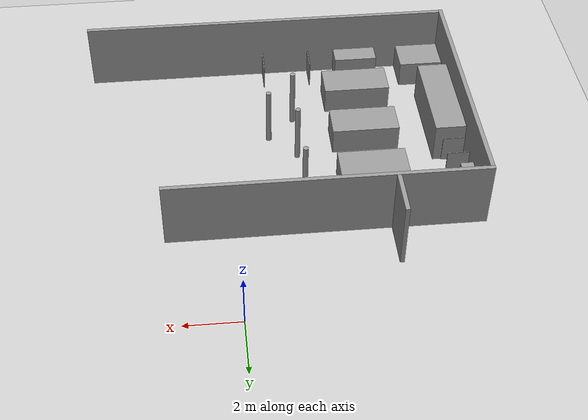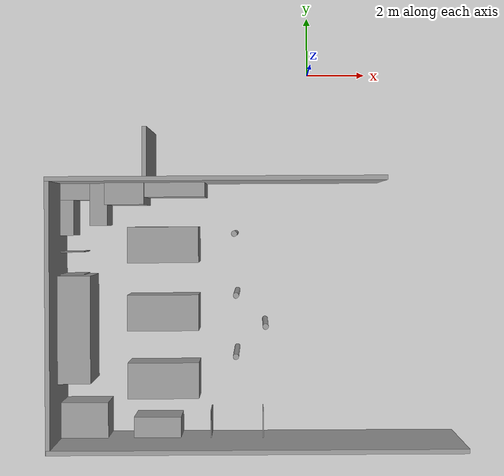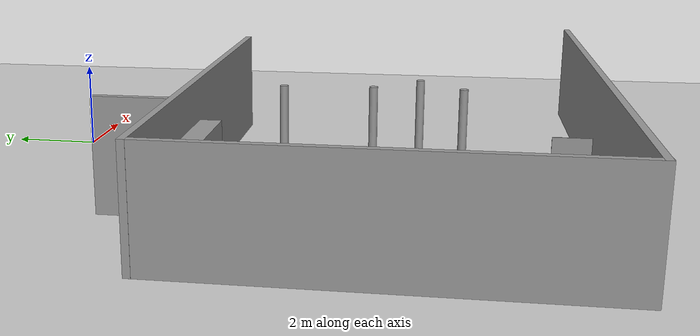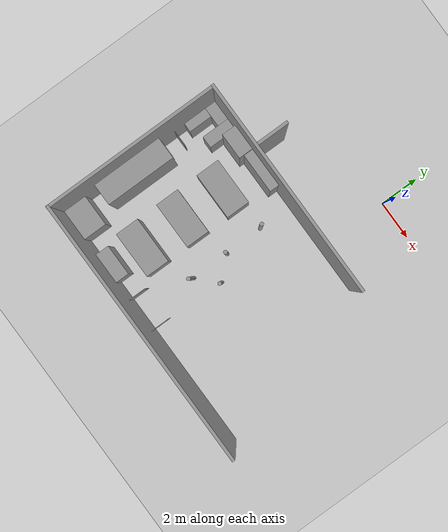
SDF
<sdf version="1.6">
 <world name="default">
  <model name="ground_plane">
   <static>1</static>
   <link name="link">
    <collision name="collision">
     <geometry><plane><normal>0 0 1</normal><size>100 100</size></plane></geometry>
     <surface>
      <contact><collide_bitmask>65535</collide_bitmask></contact>
      <friction><ode><mu>1</mu><mu2>1</mu2></ode></friction>
     </surface>
    </collision>
    <visual name="visual">
     <cast_shadows>0</cast_shadows>
     <geometry><plane><normal>0 0 1</normal><size>100 100</size></plane></geometry>
     <material>
      <script><uri>file://media/materials/scripts/gazebo.material</uri><name>Gazebo/Grey</name></script>
     </material>
    </visual>
   </link>
  </model>
  <model name="a4">
   <pose>-1.78326 -12.5146 0 0 -0 0</pose>
   <link name="Wall_12">
    <collision name="Wall_12_Collision">
     <geometry><box><size>13.62 0.15 2.5</size></box></geometry>
     <pose>0 0 1.25 0 -0 0</pose>
    </collision>
    <visual name="Wall_12_Visual">
     <pose>0 0 1.25 0 -0 0</pose>
     <geometry><box><size>13.62 0.15 2.5</size></box></geometry>
     <material>
      <script><uri>file://media/materials/scripts/gazebo.material</uri><name>Gazebo/Grey</name></script>
      <ambient>1 1 1 1</ambient>
     </material>
     <meta><layer>0</layer></meta>
    </visual>
   </link>
   <static>1</static>
  </model>
  <model name="a3_clone">
   <pose>-8.5273 -8.18669 0 0 -0 0</pose>
   <link name="Wall_10">
    <collision name="Wall_10_Collision">
     <geometry><box><size>8.82 0.15 2.5</size></box></geometry>
     <pose>0 0 1.25 0 -0 0</pose>
    </collision>
    <visual name="Wall_10_Visual">
     <pose>0 0 1.25 0 -0 0</pose>
     <geometry><box><size>8.82 0.15 2.5</size></box></geometry>
     <material>
      <script><uri>file://media/materials/scripts/gazebo.material</uri><name>Gazebo/Grey</name></script>
      <ambient>1 1 1 1</ambient>
     </material>
     <meta><layer>0</layer></meta>
    </visual>
    <pose>0 -0 0 0 -0 -1.5708</pose>
   </link>
   <static>1</static>
  </model>
  <model name="aisle6">
   <pose>-3.07982 -3.70444 0 0 -0 0</pose>
   <link name="Wall_22">
    <collision name="Wall_22_Collision">
     <geometry><box><size>11.05 0.15 2.5</size></box></geometry>
     <pose>0 0 1.25 0 -0 0</pose>
    </collision>
    <visual name="Wall_22_Visual">
     <pose>0 0 1.25 0 -0 0</pose>
     <geometry><box><size>11.05 0.15 2.5</size></box></geometry>
     <material>
      <script><uri>file://media/materials/scripts/gazebo.material</uri><name>Gazebo/Grey</name></script>
      <ambient>1 1 1 1</ambient>
     </material>
     <meta><layer>0</layer></meta>
    </visual>
   </link>
   <static>1</static>
  </model>
  <model name="aisle1_clone">
   <pose>-5.38806 -2.82651 0 0 -0 0</pose>
   <link name="Wall_2">
    <collision name="Wall_2_Collision">
     <geometry><box><size>1.6 0.15 2.5</size></box></geometry>
     <pose>0 0 1.25 0 -0 0</pose>
    </collision>
    <visual name="Wall_2_Visual">
     <pose>0 0 1.25 0 -0 0</pose>
     <geometry><box><size>1.6 0.15 2.5</size></box></geometry>
     <material>
      <script><uri>file://media/materials/scripts/gazebo.material</uri><name>Gazebo/Grey</name></script>
      <ambient>1 1 1 1</ambient>
     </material>
     <meta><layer>0</layer></meta>
    </visual>
    <pose>0 -0 0 0 -0 -1.5708</pose>
   </link>
   <static>1</static>
  </model>
  <model name="unit_box_5">
   <link name="link">
    <inertial>
     <mass>10</mass>
     <inertia>
      <ixx>0.166667</ixx>
      <ixy>0</ixy>
      <ixz>0</ixz>
      <iyy>0.166667</iyy>
      <iyz>0</iyz>
      <izz>0.166667</izz>
     </inertia>
    </inertial>
    <visual name="visual">
     <geometry><box><size>1.6 1.2 1</size></box></geometry>
     <material>
      <script><name>Gazebo/Grey</name><uri>file://media/materials/scripts/gazebo.material</uri></script>
      <shader type="vertex"><normal_map>__default__</normal_map></shader>
      <ambient>0.3 0.3 0.3 1</ambient>
      <diffuse>0.7 0.7 0.7 1</diffuse>
      <specular>0.01 0.01 0.01 1</specular>
      <emissive>0 0 0 1</emissive>
     </material>
    </visual>
    <collision name="collision">
     <geometry><box><size>1.6 1.2 1</size></box></geometry>
     <surface>
      <friction>
       <ode><mu>1</mu><mu2>1</mu2><fdir1>0 0 0</fdir1><slip1>0</slip1><slip2>0</slip2></ode>
       <torsional>
        <coefficient>1</coefficient>
        <patch_radius>0</patch_radius>
        <surface_radius>0</surface_radius>
        <use_patch_radius>1</use_patch_radius>
        <ode><slip>0</slip></ode>
       </torsional>
      </friction>
      <bounce><restitution_coefficient>0</restitution_coefficient><threshold>1e+06</threshold></bounce>
      <contact>
       <collide_without_contact>0</collide_without_contact>
       <collide_without_contact_bitmask>1</collide_without_contact_bitmask>
       <collide_bitmask>1</collide_bitmask>
       <ode>
        <soft_cfm>0</soft_cfm>
        <soft_erp>0.2</soft_erp>
        <kp>1e+13</kp>
        <kd>1</kd>
        <max_vel>0.01</max_vel>
        <min_depth>0</min_depth>
       </ode>
       <bullet>
        <split_impulse>1</split_impulse>
        <split_impulse_penetration_threshold>-0.01</split_impulse_penetration_threshold>
        <soft_cfm>0</soft_cfm>
        <soft_erp>0.2</soft_erp>
        <kp>1e+13</kp>
        <kd>1</kd>
       </bullet>
      </contact>
     </surface>
    </collision>
   </link>
   <static>0</static>
   <pose>-7.6506 -11.826 0.499996 0 -6e-06 0</pose>
  </model>
  <model name="backfuni">
   <static>1</static>
   <link name="link">
    <inertial>
     <mass>10</mass>
     <inertia>
      <ixx>0.166667</ixx>
      <ixy>0</ixy>
      <ixz>0</ixz>
      <iyy>0.166667</iyy>
      <iyz>0</iyz>
      <izz>0.166667</izz>
     </inertia>
    </inertial>
    <visual name="visual">
     <geometry><box><size>3.6 1.1 1.5</size></box></geometry>
     <material>
      <script><name>Gazebo/Grey</name><uri>file://media/materials/scripts/gazebo.material</uri></script>
      <shader type="vertex"><normal_map>__default__</normal_map></shader>
      <ambient>0.3 0.3 0.3 1</ambient>
      <diffuse>0.7 0.7 0.7 1</diffuse>
      <specular>0.01 0.01 0.01 1</specular>
      <emissive>0 0 0 1</emissive>
     </material>
    </visual>
    <collision name="collision">
     <geometry><box><size>3.6 1.1 1.5</size></box></geometry>
     <surface>
      <friction>
       <ode><mu>1</mu><mu2>1</mu2><fdir1>0 0 0</fdir1><slip1>0</slip1><slip2>0</slip2></ode>
       <torsional>
        <coefficient>1</coefficient>
        <patch_radius>0</patch_radius>
        <surface_radius>0</surface_radius>
        <use_patch_radius>1</use_patch_radius>
        <ode><slip>0</slip></ode>
       </torsional>
      </friction>
      <bounce><restitution_coefficient>0</restitution_coefficient><threshold>1e+06</threshold></bounce>
      <contact>
       <collide_without_contact>0</collide_without_contact>
       <collide_without_contact_bitmask>1</collide_without_contact_bitmask>
       <collide_bitmask>1</collide_bitmask>
       <ode>
        <soft_cfm>0</soft_cfm>
        <soft_erp>0.2</soft_erp>
        <kp>1e+13</kp>
        <kd>1</kd>
        <max_vel>0.01</max_vel>
        <min_depth>0</min_depth>
       </ode>
       <bullet>
        <split_impulse>1</split_impulse>
        <split_impulse_penetration_threshold>-0.01</split_impulse_penetration_threshold>
        <soft_cfm>0</soft_cfm>
        <soft_erp>0.2</soft_erp>
        <kp>1e+13</kp>
        <kd>1</kd>
       </bullet>
      </contact>
     </surface>
    </collision>
   </link>
   <pose>-7.89809 -8.70061 0.739652 6e-06 0 -1.57022</pose>
  </model>
  <model name="deskframe2">
   <static>1</static>
   <link name="Wall_12">
    <pose>-0.385485 0.00161 0 0 0 -1.5708</pose>
    <inertial>
     <mass>10</mass>
     <inertia><ixx>1</ixx><ixy>0</ixy><ixz>0</ixz><iyy>1</iyy><iyz>0</iyz><izz>1</izz></inertia>
    </inertial>
    <visual name="Wall_12_Visual">
     <pose>0 0 1.25 0 -0 0</pose>
     <geometry><box><size>0.8 0.03 1</size></box></geometry>
     <material>
      <script><uri>file://media/materials/scripts/gazebo.material</uri><name>Gazebo/Grey</name></script>
      <ambient>1 1 1 1</ambient>
      <shader type="vertex"><normal_map>__default__</normal_map></shader>
      <diffuse>0.7 0.7 0.7 1</diffuse>
      <specular>0.01 0.01 0.01 1</specular>
      <emissive>0 0 0 1</emissive>
     </material>
     <meta><layer>0</layer></meta>
    </visual>
    <collision name="Wall_12_Collision">
     <pose>0 0 1.25 0 -0 0</pose>
     <geometry><box><size>0.8 0.03 2.5</size></box></geometry>
     <surface>
      <friction>
       <ode><mu>1</mu><mu2>1</mu2><fdir1>0 0 0</fdir1><slip1>0</slip1><slip2>0</slip2></ode>
       <torsional>
        <coefficient>1</coefficient>
        <patch_radius>0</patch_radius>
        <surface_radius>0</surface_radius>
        <use_patch_radius>1</use_patch_radius>
        <ode><slip>0</slip></ode>
       </torsional>
      </friction>
      <bounce><restitution_coefficient>0</restitution_coefficient><threshold>1e+06</threshold></bounce>
      <contact>
       <collide_without_contact>0</collide_without_contact>
       <collide_without_contact_bitmask>1</collide_without_contact_bitmask>
       <collide_bitmask>1</collide_bitmask>
       <ode>
        <soft_cfm>0</soft_cfm>
        <soft_erp>0.2</soft_erp>
        <kp>1e+13</kp>
        <kd>1</kd>
        <max_vel>0.01</max_vel>
        <min_depth>0</min_depth>
       </ode>
       <bullet>
        <split_impulse>1</split_impulse>
        <split_impulse_penetration_threshold>-0.01</split_impulse_penetration_threshold>
        <soft_cfm>0</soft_cfm>
        <soft_erp>0.2</soft_erp>
        <kp>1e+13</kp>
        <kd>1</kd>
       </bullet>
      </contact>
     </surface>
    </collision>
   </link>
   <link name="Wall_23">
    <pose>0.385485 -0.00161 0 0 0 -1.5708</pose>
    <inertial>
     <mass>10</mass>
     <inertia><ixx>1</ixx><ixy>0</ixy><ixz>0</ixz><iyy>1</iyy><iyz>0</iyz><izz>1</izz></inertia>
    </inertial>
    <visual name="Wall_23_Visual">
     <pose>0 0 1.25 0 -0 0</pose>
     <geometry><box><size>0.8 0.03 1</size></box></geometry>
     <material>
      <script><uri>file://media/materials/scripts/gazebo.material</uri><name>Gazebo/Grey</name></script>
      <ambient>1 1 1 1</ambient>
      <shader type="vertex"><normal_map>__default__</normal_map></shader>
      <diffuse>0.7 0.7 0.7 1</diffuse>
      <specular>0.01 0.01 0.01 1</specular>
      <emissive>0 0 0 1</emissive>
     </material>
     <meta><layer>0</layer></meta>
    </visual>
    <collision name="Wall_23_Collision">
     <pose>0 0 1.25 0 -0 0</pose>
     <geometry><box><size>0.8 0.03 2.5</size></box></geometry>
     <surface>
      <friction>
       <ode><mu>1</mu><mu2>1</mu2><fdir1>0 0 0</fdir1><slip1>0</slip1><slip2>0</slip2></ode>
       <torsional>
        <coefficient>1</coefficient>
        <patch_radius>0</patch_radius>
        <surface_radius>0</surface_radius>
        <use_patch_radius>1</use_patch_radius>
        <ode><slip>0</slip></ode>
       </torsional>
      </friction>
      <bounce><restitution_coefficient>0</restitution_coefficient><threshold>1e+06</threshold></bounce>
      <contact>
       <collide_without_contact>0</collide_without_contact>
       <collide_without_contact_bitmask>1</collide_without_contact_bitmask>
       <collide_bitmask>1</collide_bitmask>
       <ode>
        <soft_cfm>0</soft_cfm>
        <soft_erp>0.2</soft_erp>
        <kp>1e+13</kp>
        <kd>1</kd>
        <max_vel>0.01</max_vel>
        <min_depth>0</min_depth>
       </ode>
       <bullet>
        <split_impulse>1</split_impulse>
        <split_impulse_penetration_threshold>-0.01</split_impulse_penetration_threshold>
        <soft_cfm>0</soft_cfm>
        <soft_erp>0.2</soft_erp>
        <kp>1e+13</kp>
        <kd>1</kd>
       </bullet>
      </contact>
     </surface>
    </collision>
   </link>
   <static>1</static>
   <pose>-8.05468 -6.49381 -0.774011 0 0 -1.56612</pose>
  </model>
  <model name="left_funi">
   <static>1</static>
   <link name="link">
    <inertial>
     <mass>1</mass>
     <inertia>
      <ixx>0.166667</ixx>
      <ixy>0</ixy>
      <ixz>0</ixz>
      <iyy>0.166667</iyy>
      <iyz>0</iyz>
      <izz>0.166667</izz>
     </inertia>
    </inertial>
    <visual name="visual">
     <geometry><box><size>2 0.48 1.6</size></box></geometry>
     <material>
      <script><name>Gazebo/Grey</name><uri>file://media/materials/scripts/gazebo.material</uri></script>
      <shader type="vertex"><normal_map>__default__</normal_map></shader>
      <ambient>0.3 0.3 0.3 1</ambient>
      <diffuse>0.7 0.7 0.7 1</diffuse>
      <specular>0.01 0.01 0.01 1</specular>
      <emissive>0 0 0 1</emissive>
     </material>
    </visual>
    <collision name="collision">
     <geometry><box><size>2 0.48 1.6</size></box></geometry>
     <surface>
      <friction>
       <ode><mu>1</mu><mu2>1</mu2><fdir1>0 0 0</fdir1><slip1>0</slip1><slip2>0</slip2></ode>
       <torsional>
        <coefficient>1</coefficient>
        <patch_radius>0</patch_radius>
        <surface_radius>0</surface_radius>
        <use_patch_radius>1</use_patch_radius>
        <ode><slip>0</slip></ode>
       </torsional>
      </friction>
      <bounce><restitution_coefficient>0</restitution_coefficient><threshold>1e+06</threshold></bounce>
      <contact>
       <collide_without_contact>0</collide_without_contact>
       <collide_without_contact_bitmask>1</collide_without_contact_bitmask>
       <collide_bitmask>1</collide_bitmask>
       <ode>
        <soft_cfm>0</soft_cfm>
        <soft_erp>0.2</soft_erp>
        <kp>1e+13</kp>
        <kd>1</kd>
        <max_vel>0.01</max_vel>
        <min_depth>0</min_depth>
       </ode>
       <bullet>
        <split_impulse>1</split_impulse>
        <split_impulse_penetration_threshold>-0.01</split_impulse_penetration_threshold>
        <soft_cfm>0</soft_cfm>
        <soft_erp>0.2</soft_erp>
        <kp>1e+13</kp>
        <kd>1</kd>
       </bullet>
      </contact>
     </surface>
    </collision>
   </link>
   <pose>-4.51021 -4.03369 0.800638 0 -0 0</pose>
  </model>
  <model name="refri">
   <static>1</static>
   <link name="link">
    <inertial>
     <mass>1</mass>
     <inertia>
      <ixx>0.166667</ixx>
      <ixy>0</ixy>
      <ixz>0</ixz>
      <iyy>0.166667</iyy>
      <iyz>0</iyz>
      <izz>0.166667</izz>
     </inertia>
    </inertial>
    <visual name="visual">
     <geometry><box><size>1.3 0.72 1.7</size></box></geometry>
     <material>
      <script><name>Gazebo/Grey</name><uri>file://media/materials/scripts/gazebo.material</uri></script>
      <shader type="vertex"><normal_map>__default__</normal_map></shader>
      <ambient>0.3 0.3 0.3 1</ambient>
      <diffuse>0.7 0.7 0.7 1</diffuse>
      <specular>0.01 0.01 0.01 1</specular>
      <emissive>0 0 0 1</emissive>
     </material>
    </visual>
    <collision name="collision">
     <geometry><box><size>1.3 0.72 1.7</size></box></geometry>
     <surface>
      <friction>
       <ode><mu>1</mu><mu2>1</mu2><fdir1>0 0 0</fdir1><slip1>0</slip1><slip2>0</slip2></ode>
       <torsional>
        <coefficient>1</coefficient>
        <patch_radius>0</patch_radius>
        <surface_radius>0</surface_radius>
        <use_patch_radius>1</use_patch_radius>
        <ode><slip>0</slip></ode>
       </torsional>
      </friction>
      <bounce><restitution_coefficient>0</restitution_coefficient><threshold>1e+06</threshold></bounce>
      <contact>
       <collide_without_contact>0</collide_without_contact>
       <collide_without_contact_bitmask>1</collide_without_contact_bitmask>
       <collide_bitmask>1</collide_bitmask>
       <ode>
        <soft_cfm>0</soft_cfm>
        <soft_erp>0.2</soft_erp>
        <kp>1e+13</kp>
        <kd>1</kd>
        <max_vel>0.01</max_vel>
        <min_depth>0</min_depth>
       </ode>
       <bullet>
        <split_impulse>1</split_impulse>
        <split_impulse_penetration_threshold>-0.01</split_impulse_penetration_threshold>
        <soft_cfm>0</soft_cfm>
        <soft_erp>0.2</soft_erp>
        <kp>1e+13</kp>
        <kd>1</kd>
       </bullet>
      </contact>
     </surface>
    </collision>
   </link>
   <pose>-6.17123 -4.1604 0.837264 0 -0 0</pose>
  </model>
  <model name="left_backdesk1">
   <static>1</static>
   <link name="link">
    <inertial>
     <mass>1</mass>
     <inertia>
      <ixx>0.166667</ixx>
      <ixy>0</ixy>
      <ixz>0</ixz>
      <iyy>0.166667</iyy>
      <iyz>0</iyz>
      <izz>0.166667</izz>
     </inertia>
    </inertial>
    <visual name="visual">
     <geometry><box><size>0.48 1.2 1</size></box></geometry>
     <material>
      <script><name>Gazebo/Grey</name><uri>file://media/materials/scripts/gazebo.material</uri></script>
      <shader type="vertex"><normal_map>__default__</normal_map></shader>
      <ambient>0.3 0.3 0.3 1</ambient>
      <diffuse>0.7 0.7 0.7 1</diffuse>
      <specular>0.01 0.01 0.01 1</specular>
      <emissive>0 0 0 1</emissive>
     </material>
    </visual>
    <collision name="collision">
     <geometry><box><size>0.48 1.2 1</size></box></geometry>
     <surface>
      <friction>
       <ode><mu>1</mu><mu2>1</mu2><fdir1>0 0 0</fdir1><slip1>0</slip1><slip2>0</slip2></ode>
       <torsional>
        <coefficient>1</coefficient>
        <patch_radius>0</patch_radius>
        <surface_radius>0</surface_radius>
        <use_patch_radius>1</use_patch_radius>
        <ode><slip>0</slip></ode>
       </torsional>
      </friction>
      <bounce><restitution_coefficient>0</restitution_coefficient><threshold>1e+06</threshold></bounce>
      <contact>
       <collide_without_contact>0</collide_without_contact>
       <collide_without_contact_bitmask>1</collide_without_contact_bitmask>
       <collide_bitmask>1</collide_bitmask>
       <ode>
        <soft_cfm>0</soft_cfm>
        <soft_erp>0.2</soft_erp>
        <kp>1e+13</kp>
        <kd>1</kd>
        <max_vel>0.01</max_vel>
        <min_depth>0</min_depth>
       </ode>
       <bullet>
        <split_impulse>1</split_impulse>
        <split_impulse_penetration_threshold>-0.01</split_impulse_penetration_threshold>
        <soft_cfm>0</soft_cfm>
        <soft_erp>0.2</soft_erp>
        <kp>1e+13</kp>
        <kd>1</kd>
       </bullet>
      </contact>
     </surface>
    </collision>
   </link>
   <pose>-8.23609 -4.94617 0.5 0 -0 0</pose>
  </model>
  <model name="left_backdesk2">
   <static>1</static>
   <link name="link">
    <inertial>
     <mass>1</mass>
     <inertia>
      <ixx>0.166667</ixx>
      <ixy>0</ixy>
      <ixz>0</ixz>
      <iyy>0.166667</iyy>
      <iyz>0</iyz>
      <izz>0.166667</izz>
     </inertia>
    </inertial>
    <visual name="visual">
     <geometry><box><size>1 0.56 1</size></box></geometry>
     <material>
      <script><name>Gazebo/Grey</name><uri>file://media/materials/scripts/gazebo.material</uri></script>
      <shader type="vertex"><normal_map>__default__</normal_map></shader>
      <ambient>0.3 0.3 0.3 1</ambient>
      <diffuse>0.7 0.7 0.7 1</diffuse>
      <specular>0.01 0.01 0.01 1</specular>
      <emissive>0 0 0 1</emissive>
     </material>
    </visual>
    <collision name="collision">
     <geometry><box><size>1 0.56 1</size></box></geometry>
     <surface>
      <friction>
       <ode><mu>1</mu><mu2>1</mu2><fdir1>0 0 0</fdir1><slip1>0</slip1><slip2>0</slip2></ode>
       <torsional>
        <coefficient>1</coefficient>
        <patch_radius>0</patch_radius>
        <surface_radius>0</surface_radius>
        <use_patch_radius>1</use_patch_radius>
        <ode><slip>0</slip></ode>
       </torsional>
      </friction>
      <bounce><restitution_coefficient>0</restitution_coefficient><threshold>1e+06</threshold></bounce>
      <contact>
       <collide_without_contact>0</collide_without_contact>
       <collide_without_contact_bitmask>1</collide_without_contact_bitmask>
       <collide_bitmask>1</collide_bitmask>
       <ode>
        <soft_cfm>0</soft_cfm>
        <soft_erp>0.2</soft_erp>
        <kp>1e+13</kp>
        <kd>1</kd>
        <max_vel>0.01</max_vel>
        <min_depth>0</min_depth>
       </ode>
       <bullet>
        <split_impulse>1</split_impulse>
        <split_impulse_penetration_threshold>-0.01</split_impulse_penetration_threshold>
        <soft_cfm>0</soft_cfm>
        <soft_erp>0.2</soft_erp>
        <kp>1e+13</kp>
        <kd>1</kd>
       </bullet>
      </contact>
     </surface>
    </collision>
   </link>
   <pose>-7.95136 -4.06583 0.5 0 -0 0</pose>
  </model>
  <model name="left_backdesk3">
   <static>1</static>
   <link name="link">
    <inertial>
     <mass>1</mass>
     <inertia>
      <ixx>0.166667</ixx>
      <ixy>0</ixy>
      <ixz>0</ixz>
      <iyy>0.166667</iyy>
      <iyz>0</iyz>
      <izz>0.166667</izz>
     </inertia>
    </inertial>
    <visual name="visual">
     <geometry><box><size>0.6 1.43 1</size></box></geometry>
     <material>
      <script><name>Gazebo/Grey</name><uri>file://media/materials/scripts/gazebo.material</uri></script>
      <shader type="vertex"><normal_map>__default__</normal_map></shader>
      <ambient>0.3 0.3 0.3 1</ambient>
      <diffuse>0.7 0.7 0.7 1</diffuse>
      <specular>0.01 0.01 0.01 1</specular>
      <emissive>0 0 0 1</emissive>
     </material>
    </visual>
    <collision name="collision">
     <geometry><box><size>0.6 1.43 1</size></box></geometry>
     <surface>
      <friction>
       <ode><mu>1</mu><mu2>1</mu2><fdir1>0 0 0</fdir1><slip1>0</slip1><slip2>0</slip2></ode>
       <torsional>
        <coefficient>1</coefficient>
        <patch_radius>0</patch_radius>
        <surface_radius>0</surface_radius>
        <use_patch_radius>1</use_patch_radius>
        <ode><slip>0</slip></ode>
       </torsional>
      </friction>
      <bounce><restitution_coefficient>0</restitution_coefficient><threshold>1e+06</threshold></bounce>
      <contact>
       <collide_without_contact>0</collide_without_contact>
       <collide_without_contact_bitmask>1</collide_without_contact_bitmask>
       <collide_bitmask>1</collide_bitmask>
       <ode>
        <soft_cfm>0</soft_cfm>
        <soft_erp>0.2</soft_erp>
        <kp>1e+13</kp>
        <kd>1</kd>
        <max_vel>0.01</max_vel>
        <min_depth>0</min_depth>
       </ode>
       <bullet>
        <split_impulse>1</split_impulse>
        <split_impulse_penetration_threshold>-0.01</split_impulse_penetration_threshold>
        <soft_cfm>0</soft_cfm>
        <soft_erp>0.2</soft_erp>
        <kp>1e+13</kp>
        <kd>1</kd>
       </bullet>
      </contact>
     </surface>
    </collision>
   </link>
   <pose>-7.15361 -4.50076 0.5 0 -0 0</pose>
  </model>
  <model name="bigdesk">
   <static>1</static>
   <link name="link">
    <inertial>
     <mass>1</mass>
     <inertia>
      <ixx>0.166667</ixx>
      <ixy>0</ixy>
      <ixz>0</ixz>
      <iyy>0.166667</iyy>
      <iyz>0</iyz>
      <izz>0.166667</izz>
     </inertia>
    </inertial>
    <visual name="visual">
     <geometry><box><size>2.42 1.22 1</size></box></geometry>
     <material>
      <script><name>Gazebo/Grey</name><uri>file://media/materials/scripts/gazebo.material</uri></script>
      <shader type="vertex"><normal_map>__default__</normal_map></shader>
      <ambient>0.3 0.3 0.3 1</ambient>
      <diffuse>0.7 0.7 0.7 1</diffuse>
      <specular>0.01 0.01 0.01 1</specular>
      <emissive>0 0 0 1</emissive>
     </material>
    </visual>
    <collision name="collision">
     <geometry><box><size>2.42 1.22 1</size></box></geometry>
     <surface>
      <friction>
       <ode><mu>1</mu><mu2>1</mu2><fdir1>0 0 0</fdir1><slip1>0</slip1><slip2>0</slip2></ode>
       <torsional>
        <coefficient>1</coefficient>
        <patch_radius>0</patch_radius>
        <surface_radius>0</surface_radius>
        <use_patch_radius>1</use_patch_radius>
        <ode><slip>0</slip></ode>
       </torsional>
      </friction>
      <bounce><restitution_coefficient>0</restitution_coefficient><threshold>1e+06</threshold></bounce>
      <contact>
       <collide_without_contact>0</collide_without_contact>
       <collide_without_contact_bitmask>1</collide_without_contact_bitmask>
       <collide_bitmask>1</collide_bitmask>
       <ode>
        <soft_cfm>0</soft_cfm>
        <soft_erp>0.2</soft_erp>
        <kp>1e+13</kp>
        <kd>1</kd>
        <max_vel>0.01</max_vel>
        <min_depth>0</min_depth>
       </ode>
       <bullet>
        <split_impulse>1</split_impulse>
        <split_impulse_penetration_threshold>-0.01</split_impulse_penetration_threshold>
        <soft_cfm>0</soft_cfm>
        <soft_erp>0.2</soft_erp>
        <kp>1e+13</kp>
        <kd>1</kd>
       </bullet>
      </contact>
     </surface>
    </collision>
   </link>
   <pose>-4.97753 -5.88358 0.5 0 -0 0</pose>
  </model>
  <model name="bigdesk2">
   <static>1</static>
   <link name="link">
    <inertial>
     <mass>1</mass>
     <inertia>
      <ixx>0.166667</ixx>
      <ixy>0</ixy>
      <ixz>0</ixz>
      <iyy>0.166667</iyy>
      <iyz>0</iyz>
      <izz>0.166667</izz>
     </inertia>
    </inertial>
    <visual name="visual">
     <geometry><box><size>2.42 1.22 1</size></box></geometry>
     <material>
      <script><name>Gazebo/Grey</name><uri>file://media/materials/scripts/gazebo.material</uri></script>
      <shader type="vertex"><normal_map>__default__</normal_map></shader>
      <ambient>0.3 0.3 0.3 1</ambient>
      <diffuse>0.7 0.7 0.7 1</diffuse>
      <specular>0.01 0.01 0.01 1</specular>
      <emissive>0 0 0 1</emissive>
     </material>
    </visual>
    <collision name="collision">
     <geometry><box><size>2.42 1.22 1</size></box></geometry>
     <surface>
      <friction>
       <ode><mu>1</mu><mu2>1</mu2><fdir1>0 0 0</fdir1><slip1>0</slip1><slip2>0</slip2></ode>
       <torsional>
        <coefficient>1</coefficient>
        <patch_radius>0</patch_radius>
        <surface_radius>0</surface_radius>
        <use_patch_radius>1</use_patch_radius>
        <ode><slip>0</slip></ode>
       </torsional>
      </friction>
      <bounce><restitution_coefficient>0</restitution_coefficient><threshold>1e+06</threshold></bounce>
      <contact>
       <collide_without_contact>0</collide_without_contact>
       <collide_without_contact_bitmask>1</collide_without_contact_bitmask>
       <collide_bitmask>1</collide_bitmask>
       <ode>
        <soft_cfm>0</soft_cfm>
        <soft_erp>0.2</soft_erp>
        <kp>1e+13</kp>
        <kd>1</kd>
        <max_vel>0.01</max_vel>
        <min_depth>0</min_depth>
       </ode>
       <bullet>
        <split_impulse>1</split_impulse>
        <split_impulse_penetration_threshold>-0.01</split_impulse_penetration_threshold>
        <soft_cfm>0</soft_cfm>
        <soft_erp>0.2</soft_erp>
        <kp>1e+13</kp>
        <kd>1</kd>
       </bullet>
      </contact>
     </surface>
    </collision>
   </link>
   <pose>-4.97997 -8.19496 0.5 0 -0 0</pose>
  </model>
  <model name="bigdesk3">
   <static>1</static>
   <link name="link">
    <inertial>
     <mass>1</mass>
     <inertia>
      <ixx>0.166667</ixx>
      <ixy>0</ixy>
      <ixz>0</ixz>
      <iyy>0.166667</iyy>
      <iyz>0</iyz>
      <izz>0.166667</izz>
     </inertia>
    </inertial>
    <visual name="visual">
     <geometry><box><size>2.42 1.22 1</size></box></geometry>
     <material>
      <script><name>Gazebo/Grey</name><uri>file://media/materials/scripts/gazebo.material</uri></script>
      <shader type="vertex"><normal_map>__default__</normal_map></shader>
      <ambient>0.3 0.3 0.3 1</ambient>
      <diffuse>0.7 0.7 0.7 1</diffuse>
      <specular>0.01 0.01 0.01 1</specular>
      <emissive>0 0 0 1</emissive>
     </material>
    </visual>
    <collision name="collision">
     <geometry><box><size>2.42 1.22 1</size></box></geometry>
     <surface>
      <friction>
       <ode><mu>1</mu><mu2>1</mu2><fdir1>0 0 0</fdir1><slip1>0</slip1><slip2>0</slip2></ode>
       <torsional>
        <coefficient>1</coefficient>
        <patch_radius>0</patch_radius>
        <surface_radius>0</surface_radius>
        <use_patch_radius>1</use_patch_radius>
        <ode><slip>0</slip></ode>
       </torsional>
      </friction>
      <bounce><restitution_coefficient>0</restitution_coefficient><threshold>1e+06</threshold></bounce>
      <contact>
       <collide_without_contact>0</collide_without_contact>
       <collide_without_contact_bitmask>1</collide_without_contact_bitmask>
       <collide_bitmask>1</collide_bitmask>
       <ode>
        <soft_cfm>0</soft_cfm>
        <soft_erp>0.2</soft_erp>
        <kp>1e+13</kp>
        <kd>1</kd>
        <max_vel>0.01</max_vel>
        <min_depth>0</min_depth>
       </ode>
       <bullet>
        <split_impulse>1</split_impulse>
        <split_impulse_penetration_threshold>-0.01</split_impulse_penetration_threshold>
        <soft_cfm>0</soft_cfm>
        <soft_erp>0.2</soft_erp>
        <kp>1e+13</kp>
        <kd>1</kd>
       </bullet>
      </contact>
     </surface>
    </collision>
   </link>
   <pose>-4.97581 -10.501 0.5 0 -0 0</pose>
  </model>
  <model name="deskfrm">
   <pose>-2.48433 -11.9843 0 0 0 -1.57079</pose>
   <link name="Wall_14">
    <collision name="Wall_14_Collision">
     <geometry><box><size>0.9 0.03 1</size></box></geometry>
     <pose>0 0 0.5 0 -0 0</pose>
    </collision>
    <visual name="Wall_14_Visual">
     <pose>0 0 0.5 0 -0 0</pose>
     <geometry><box><size>0.9 0.03 1</size></box></geometry>
     <material>
      <script><uri>file://media/materials/scripts/gazebo.material</uri><name>Gazebo/Grey</name></script>
      <ambient>1 1 1 1</ambient>
     </material>
     <meta><layer>0</layer></meta>
    </visual>
    <pose>-0.000217 0.885277 0 0 -0 0</pose>
   </link>
   <link name="Wall_16">
    <collision name="Wall_16_Collision">
     <geometry><box><size>0.9 0.03 1</size></box></geometry>
     <pose>0 0 0.5 0 -0 0</pose>
    </collision>
    <visual name="Wall_16_Visual">
     <pose>0 0 0.5 0 -0 0</pose>
     <geometry><box><size>0.9 0.03 1</size></box></geometry>
     <material>
      <script><uri>file://media/materials/scripts/gazebo.material</uri><name>Gazebo/Grey</name></script>
      <ambient>1 1 1 1</ambient>
     </material>
     <meta><layer>0</layer></meta>
    </visual>
    <pose>0.000217 -0.885277 0 0 -0 0</pose>
   </link>
   <static>1</static>
  </model>
  <model name="deskthird">
   <static>1</static>
   <link name="link">
    <inertial>
     <mass>1</mass>
     <inertia>
      <ixx>0.166667</ixx>
      <ixy>0</ixy>
      <ixz>0</ixz>
      <iyy>0.166667</iyy>
      <iyz>0</iyz>
      <izz>0.166667</izz>
     </inertia>
    </inertial>
    <visual name="visual">
     <geometry><box><size>1.6 0.7 1</size></box></geometry>
     <material>
      <script><name>Gazebo/Grey</name><uri>file://media/materials/scripts/gazebo.material</uri></script>
      <shader type="vertex"><normal_map>__default__</normal_map></shader>
      <ambient>0.3 0.3 0.3 1</ambient>
      <diffuse>0.7 0.7 0.7 1</diffuse>
      <specular>0.01 0.01 0.01 1</specular>
      <emissive>0 0 0 1</emissive>
     </material>
    </visual>
    <collision name="collision">
     <geometry><box><size>1.6 0.7 1</size></box></geometry>
     <surface>
      <friction>
       <ode><mu>1</mu><mu2>1</mu2><fdir1>0 0 0</fdir1><slip1>0</slip1><slip2>0</slip2></ode>
       <torsional>
        <coefficient>1</coefficient>
        <patch_radius>0</patch_radius>
        <surface_radius>0</surface_radius>
        <use_patch_radius>1</use_patch_radius>
        <ode><slip>0</slip></ode>
       </torsional>
      </friction>
      <bounce><restitution_coefficient>0</restitution_coefficient><threshold>1e+06</threshold></bounce>
      <contact>
       <collide_without_contact>0</collide_without_contact>
       <collide_without_contact_bitmask>1</collide_without_contact_bitmask>
       <collide_bitmask>1</collide_bitmask>
       <ode>
        <soft_cfm>0</soft_cfm>
        <soft_erp>0.2</soft_erp>
        <kp>1e+13</kp>
        <kd>1</kd>
        <max_vel>0.01</max_vel>
        <min_depth>0</min_depth>
       </ode>
       <bullet>
        <split_impulse>1</split_impulse>
        <split_impulse_penetration_threshold>-0.01</split_impulse_penetration_threshold>
        <soft_cfm>0</soft_cfm>
        <soft_erp>0.2</soft_erp>
        <kp>1e+13</kp>
        <kd>1</kd>
       </bullet>
      </contact>
     </surface>
    </collision>
   </link>
   <pose>-5.17932 -12.0767 0.5 0 -0 0</pose>
  </model>
  <model name="unit_cylinder_clone_0_clone_clone">
   <pose>-1.51022 -8.51691 1.10608 0 0 -0.003582</pose>
   <static>1</static>
   <link name="link">
    <inertial>
     <mass>1</mass>
     <inertia><ixx>0.145833</ixx><ixy>0</ixy><ixz>0</ixz><iyy>0.145833</iyy><iyz>0</iyz><izz>0.125</izz></inertia>
    </inertial>
    <collision name="collision">
     <geometry><cylinder><radius>0.0945558</radius><length>2.21218</length></cylinder></geometry>
    </collision>
    <visual name="visual">
     <geometry><cylinder><radius>0.0945558</radius><length>2.21218</length></cylinder></geometry>
     <material>
      <script><name>Gazebo/Grey</name><uri>file://media/materials/scripts/gazebo.material</uri></script>
     </material>
    </visual>
   </link>
  </model>
  <model name="unit_cylinder_clone_1_clone">
   <pose>-2.51678 -5.49762 1.10608 0 0 -0.003204</pose>
   <static>1</static>
   <link name="link">
    <inertial>
     <mass>1</mass>
     <inertia><ixx>0.145833</ixx><ixy>0</ixy><ixz>0</ixz><iyy>0.145833</iyy><iyz>0</iyz><izz>0.125</izz></inertia>
    </inertial>
    <collision name="collision">
     <geometry><cylinder><radius>0.0945558</radius><length>2.21218</length></cylinder></geometry>
    </collision>
    <visual name="visual">
     <geometry><cylinder><radius>0.0945558</radius><length>2.21218</length></cylinder></geometry>
     <material>
      <script><name>Gazebo/Grey</name><uri>file://media/materials/scripts/gazebo.material</uri></script>
     </material>
    </visual>
   </link>
  </model>
  <model name="unit_cylinder_clone_clone_0_clone">
   <pose>-2.46434 -7.50213 1.11632 0 0 -0.003704</pose>
   <static>1</static>
   <link name="link">
    <inertial>
     <mass>1</mass>
     <inertia><ixx>0.145833</ixx><ixy>0</ixy><ixz>0</ixz><iyy>0.145833</iyy><iyz>0</iyz><izz>0.125</izz></inertia>
    </inertial>
    <collision name="collision">
     <geometry><cylinder><radius>0.0945558</radius><length>2.23266</length></cylinder></geometry>
    </collision>
    <visual name="visual">
     <geometry><cylinder><radius>0.0945558</radius><length>2.23266</length></cylinder></geometry>
     <material>
      <script><name>Gazebo/Grey</name><uri>file://media/materials/scripts/gazebo.material</uri></script>
     </material>
    </visual>
   </link>
  </model>
  <model name="unit_cylinder_clone_clone_clone_clone">
   <pose>-2.47737 -9.48656 1.11632 0 0 -0.00354</pose>
   <static>1</static>
   <link name="link">
    <inertial>
     <mass>1</mass>
     <inertia><ixx>0.145833</ixx><ixy>0</ixy><ixz>0</ixz><iyy>0.145833</iyy><iyz>0</iyz><izz>0.125</izz></inertia>
    </inertial>
    <collision name="collision">
     <geometry><cylinder><radius>0.0945558</radius><length>2.23266</length></cylinder></geometry>
    </collision>
    <visual name="visual">
     <geometry><cylinder><radius>0.0945558</radius><length>2.23266</length></cylinder></geometry>
     <material>
      <script><name>Gazebo/Grey</name><uri>file://media/materials/scripts/gazebo.material</uri></script>
     </material>
    </visual>
   </link>
  </model>
 </world>
</sdf>
